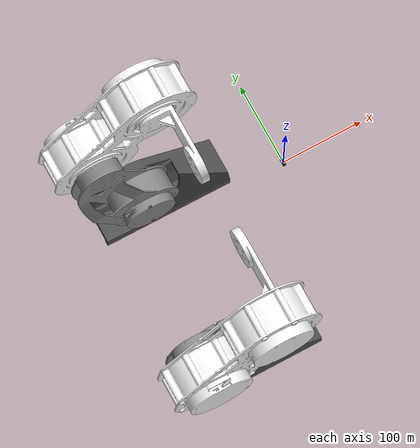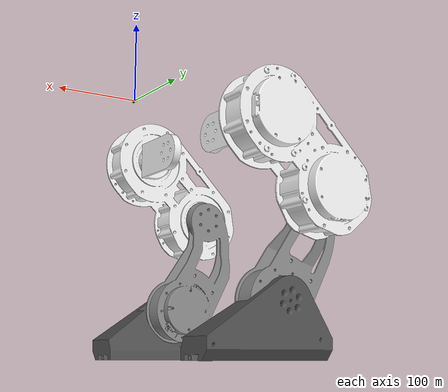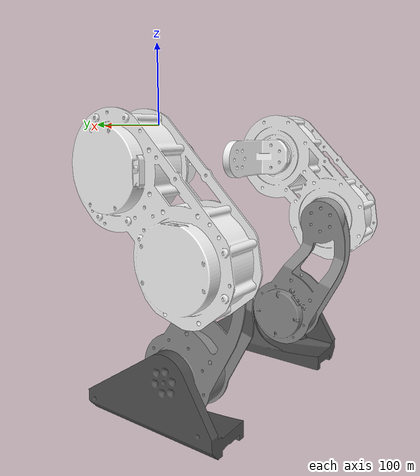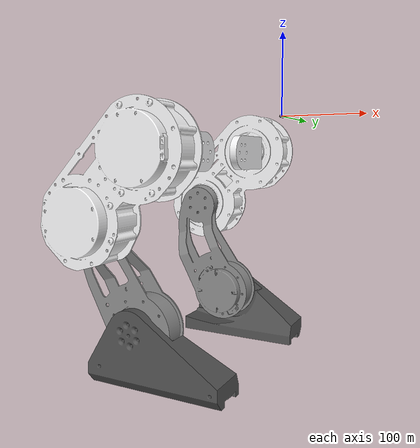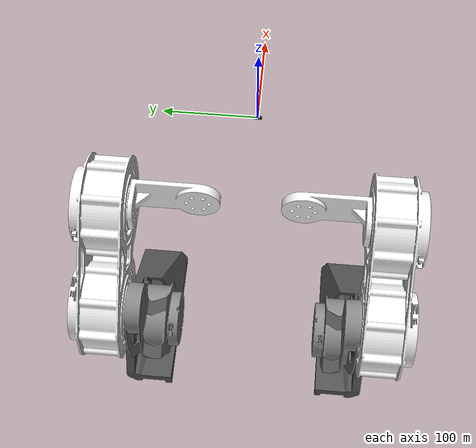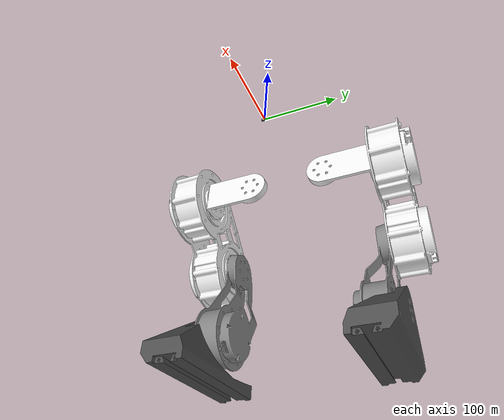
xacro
<?xml version="1.0"?>
<robot xmlns:xacro="http://www.ros.org/wiki/xacro" name="rivetrobot">

  <!-- Materials (shared across all assemblies) -->
  <material name="RS06">
    <color rgba="0.980 0.714 0.004 1.0"/>
  </material>
  <material name="Steel">
    <color rgba="0.196 0.196 0.196 1.0"/>
  </material>
  <material name="Aluminum_6061">
    <color rgba="0.961 0.961 0.965 1.0"/>
  </material>
  <material name="Foot">
    <color rgba="0.314 0.314 0.314 1.0"/>
  </material>
  <material name="RS02">
    <color rgba="0.537 0.537 0.537 1.0"/>
  </material>

  <!-- Assembly includes -->
  <xacro:include filename="$(find rivetrobot_description)/urdf/assemblies/UPPER_HOUS_ASM_1_ASM_2_ASM_1_ASM.urdf.xacro"/>
  <xacro:include filename="$(find rivetrobot_description)/urdf/assemblies/rivetrobot.urdf.xacro"/>

  <!-- Instantiate assemblies -->
  <xacro:UPPER_HOUS_ASM_1_ASM_2_ASM_1_ASM prefix=""/>
  <xacro:rivetrobot prefix=""/>

  <!-- Mount joints (cross-assembly connections) -->
  <!-- These define how assemblies connect to each other. -->
  <!-- When swapping a dummy assembly with a real part, -->
  <!-- update the include + macro call above, and adjust -->
  <!-- parent/child link names in the mount joint below. -->

  <joint name="Rigid_14" type="fixed">
    <parent link="base_link"/>
    <child link="imu"/>
    <origin xyz="0.049483 0.000000 0.050407" rpy="2.137906 0.000000 1.570796"/>
  </joint>

</robot>

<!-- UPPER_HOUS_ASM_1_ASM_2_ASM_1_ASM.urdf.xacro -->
<robot xmlns:xacro="http://www.ros.org/wiki/xacro" name="UPPER_HOUS_ASM_1_ASM_2_ASM_1_ASM_macro">

  <xacro:macro name="UPPER_HOUS_ASM_1_ASM_2_ASM_1_ASM" params="prefix">

    <!-- Links -->
    <link name="${prefix}imu">
      <inertial>
        <origin xyz="-0.000111 -0.000161 -0.004072" rpy="0 0 0"/>
        <mass value="0.227379"/>
        <inertia ixx="3.181533e-05" ixy="1.204393e-07" ixz="-2.547203e-07"
                 iyy="1.625286e-04" iyz="8.916707e-08" izz="1.552163e-04"/>
      </inertial>
      <visual>
        <origin xyz="0.000000 0.000000 0.000000" rpy="0.000000 0.000000 0.000000"/>
        <geometry>
          <mesh filename="package://rivetrobot_description/meshes/UPPER_HOUS_ASM_1_ASM_2_ASM_1_ASM/imu.dae" scale="1 1 1"/>
        </geometry>
        <material name="Steel"/>
      </visual>
      <collision>
        <origin xyz="0.000000 0.000000 0.000000" rpy="0.000000 0.000000 0.000000"/>
        <geometry>
          <mesh filename="package://rivetrobot_description/meshes/UPPER_HOUS_ASM_1_ASM_2_ASM_1_ASM/imu_collision.stl" scale="0.01 0.01 0.01"/>
        </geometry>
      </collision>
    </link>

  </xacro:macro>

</robot>

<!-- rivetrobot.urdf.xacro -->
<robot xmlns:xacro="http://www.ros.org/wiki/xacro" name="rivetrobot_macro">

  <xacro:macro name="rivetrobot" params="prefix">

    <!-- Links -->
    <link name="base_link">
      <inertial>
        <origin xyz="-0.132711 -0.000087 0.013762" rpy="0 0 0"/>
        <mass value="12.524044"/>
        <inertia ixx="5.520864e-02" ixy="-4.161284e-05" ixz="-5.509147e-03"
                 iyy="1.169475e-01" iyz="-1.280153e-05" izz="1.180382e-01"/>
      </inertial>
      <visual>
        <origin xyz="0.000000 0.000000 0.000000" rpy="0.000000 0.000000 0.000000"/>
        <geometry>
          <mesh filename="package://rivetrobot_description/meshes/rivetrobot/base_link.dae" scale="1 1 1"/>
        </geometry>
        <material name="Steel"/>
      </visual>
      <collision>
        <origin xyz="0.000000 0.000000 0.000000" rpy="0.000000 0.000000 0.000000"/>
        <geometry>
          <mesh filename="package://rivetrobot_description/meshes/rivetrobot/base_link_collision.stl" scale="0.01 0.01 0.01"/>
        </geometry>
      </collision>
    </link>

    <link name="Yaw_R">
      <inertial>
        <origin xyz="-0.006105 -0.012631 -0.053523" rpy="0 0 0"/>
        <mass value="0.631727"/>
        <inertia ixx="5.220905e-04" ixy="4.624520e-07" ixz="-3.393596e-06"
                 iyy="3.834018e-04" iyz="-2.135784e-06" izz="3.746279e-04"/>
      </inertial>
      <visual>
        <origin xyz="0.103104 0.050000 -0.011836" rpy="0.000000 0.000000 0.000000"/>
        <geometry>
          <mesh filename="package://rivetrobot_description/meshes/rivetrobot/Yaw_R.dae" scale="1 1 1"/>
        </geometry>
        <material name="RS06"/>
      </visual>
      <collision>
        <origin xyz="0.103104 0.050000 -0.011836" rpy="0.000000 0.000000 0.000000"/>
        <geometry>
          <mesh filename="package://rivetrobot_description/meshes/rivetrobot/Yaw_R_collision.stl" scale="0.01 0.01 0.01"/>
        </geometry>
      </collision>
    </link>

    <link name="Yaw_L">
      <inertial>
        <origin xyz="-0.006105 0.012232 -0.053523" rpy="0 0 0"/>
        <mass value="0.631727"/>
        <inertia ixx="5.220559e-04" ixy="1.046129e-06" ixz="-3.393596e-06"
                 iyy="3.834018e-04" iyz="1.945483e-06" izz="3.745933e-04"/>
      </inertial>
      <visual>
        <origin xyz="0.103104 -0.050000 -0.011836" rpy="0.000000 0.000000 0.000000"/>
        <geometry>
          <mesh filename="package://rivetrobot_description/meshes/rivetrobot/Yaw_L.dae" scale="1 1 1"/>
        </geometry>
        <material name="RS06"/>
      </visual>
      <collision>
        <origin xyz="0.103104 -0.050000 -0.011836" rpy="0.000000 0.000000 0.000000"/>
        <geometry>
          <mesh filename="package://rivetrobot_description/meshes/rivetrobot/Yaw_L_collision.stl" scale="0.01 0.01 0.01"/>
        </geometry>
      </collision>
    </link>

    <link name="arm_right">
      <inertial>
        <origin xyz="-0.029281 -0.000121 -0.002212" rpy="0 0 0"/>
        <mass value="0.099578"/>
        <inertia ixx="2.392334e-05" ixy="-4.319345e-07" ixz="1.219154e-05"
                 iyy="9.735478e-05" iyz="2.497680e-07" izz="1.054438e-04"/>
      </inertial>
      <visual>
        <origin xyz="0.055661 -0.042448 -0.085104" rpy="1.570796 1.570796 0.000000"/>
        <geometry>
          <mesh filename="package://rivetrobot_description/meshes/rivetrobot/arm_right.dae" scale="1 1 1"/>
        </geometry>
        <material name="Aluminum_6061"/>
      </visual>
      <collision>
        <origin xyz="0.055661 -0.042448 -0.085104" rpy="1.570796 1.570796 0.000000"/>
        <geometry>
          <mesh filename="package://rivetrobot_description/meshes/rivetrobot/arm_right_collision.stl" scale="0.01 0.01 0.01"/>
        </geometry>
      </collision>
    </link>

    <link name="arm_left">
      <inertial>
        <origin xyz="0.029282 -0.000121 -0.002212" rpy="0 0 0"/>
        <mass value="0.099578"/>
        <inertia ixx="2.392344e-05" ixy="4.318760e-07" ixz="-1.219163e-05"
                 iyy="9.735515e-05" iyz="2.497505e-07" izz="1.054441e-04"/>
      </inertial>
      <visual>
        <origin xyz="-0.055661 -0.042448 -0.085104" rpy="-1.570796 1.570796 0.000000"/>
        <geometry>
          <mesh filename="package://rivetrobot_description/meshes/rivetrobot/arm_left.dae" scale="1 1 1"/>
        </geometry>
        <material name="Aluminum_6061"/>
      </visual>
      <collision>
        <origin xyz="-0.055661 -0.042448 -0.085104" rpy="-1.570796 1.570796 0.000000"/>
        <geometry>
          <mesh filename="package://rivetrobot_description/meshes/rivetrobot/arm_left_collision.stl" scale="0.01 0.01 0.01"/>
        </geometry>
      </collision>
    </link>

    <link name="thigh_right">
      <inertial>
        <origin xyz="-0.039031 -0.039274 0.023614" rpy="0 0 0"/>
        <mass value="1.847482"/>
        <inertia ixx="4.734522e-03" ixy="-2.825429e-03" ixz="4.772167e-06"
                 iyy="4.691757e-03" iyz="-6.251956e-06" izz="8.222514e-03"/>
      </inertial>
      <visual>
        <origin xyz="0.096867 0.040619 -0.124911" rpy="-1.570796 0.000000 0.000000"/>
        <geometry>
          <mesh filename="package://rivetrobot_description/meshes/rivetrobot/thigh_right.dae" scale="1 1 1"/>
        </geometry>
        <material name="Aluminum_6061"/>
      </visual>
      <collision>
        <origin xyz="0.096867 0.040619 -0.124911" rpy="-1.570796 0.000000 0.000000"/>
        <geometry>
          <mesh filename="package://rivetrobot_description/meshes/rivetrobot/thigh_right_collision.stl" scale="0.01 0.01 0.01"/>
        </geometry>
      </collision>
    </link>

    <link name="thigh_left">
      <inertial>
        <origin xyz="-0.039031 0.039274 0.023614" rpy="0 0 0"/>
        <mass value="1.847482"/>
        <inertia ixx="4.734527e-03" ixy="2.825446e-03" ixz="4.784500e-06"
                 iyy="4.691792e-03" iyz="6.231478e-06" izz="8.222554e-03"/>
      </inertial>
      <visual>
        <origin xyz="0.096867 -0.040619 -0.124911" rpy="-1.570796 0.000000 0.000000"/>
        <geometry>
          <mesh filename="package://rivetrobot_description/meshes/rivetrobot/thigh_left.dae" scale="1 1 1"/>
        </geometry>
        <material name="Aluminum_6061"/>
      </visual>
      <collision>
        <origin xyz="0.096867 -0.040619 -0.124911" rpy="-1.570796 0.000000 0.000000"/>
        <geometry>
          <mesh filename="package://rivetrobot_description/meshes/rivetrobot/thigh_left_collision.stl" scale="0.01 0.01 0.01"/>
        </geometry>
      </collision>
    </link>

    <link name="shin_right">
      <inertial>
        <origin xyz="0.029011 -0.082760 -0.016712" rpy="0 0 0"/>
        <mass value="0.708393"/>
        <inertia ixx="2.861626e-03" ixy="9.393024e-04" ixz="9.203748e-05"
                 iyy="6.852746e-04" iyz="-2.478557e-04" izz="3.353418e-03"/>
      </inertial>
      <visual>
        <origin xyz="0.175000 0.119506 -0.124911" rpy="-1.570796 0.000000 0.000000"/>
        <geometry>
          <mesh filename="package://rivetrobot_description/meshes/rivetrobot/shin_right.dae" scale="1 1 1"/>
        </geometry>
        <material name="RS02"/>
      </visual>
      <collision>
        <origin xyz="0.175000 0.119506 -0.124911" rpy="-1.570796 0.000000 0.000000"/>
        <geometry>
          <mesh filename="package://rivetrobot_description/meshes/rivetrobot/shin_right_collision.stl" scale="0.01 0.01 0.01"/>
        </geometry>
      </collision>
    </link>

    <link name="shin_left">
      <inertial>
        <origin xyz="0.029011 -0.082760 0.016712" rpy="0 0 0"/>
        <mass value="0.708394"/>
        <inertia ixx="2.861628e-03" ixy="9.393034e-04" ixz="-9.203791e-05"
                 iyy="6.852758e-04" iyz="2.478565e-04" izz="3.353421e-03"/>
      </inertial>
      <visual>
        <origin xyz="0.175000 0.119506 0.124911" rpy="1.570796 0.000000 0.000000"/>
        <geometry>
          <mesh filename="package://rivetrobot_description/meshes/rivetrobot/shin_left.dae" scale="1 1 1"/>
        </geometry>
        <material name="RS02"/>
      </visual>
      <collision>
        <origin xyz="0.175000 0.119506 0.124911" rpy="1.570796 0.000000 0.000000"/>
        <geometry>
          <mesh filename="package://rivetrobot_description/meshes/rivetrobot/shin_left_collision.stl" scale="0.01 0.01 0.01"/>
        </geometry>
      </collision>
    </link>

    <link name="foot_right">
      <inertial>
        <origin xyz="0.025986 -0.038807 -0.001568" rpy="0 0 0"/>
        <mass value="0.066062"/>
        <inertia ixx="5.107256e-05" ixy="6.861592e-06" ixz="5.018784e-06"
                 iyy="1.533255e-04" iyz="-1.150518e-05" izz="1.711682e-04"/>
      </inertial>
      <visual>
        <origin xyz="0.127907 0.248894 -0.125411" rpy="-1.570796 0.000000 0.000000"/>
        <geometry>
          <mesh filename="package://rivetrobot_description/meshes/rivetrobot/foot_right.dae" scale="1 1 1"/>
        </geometry>
        <material name="Foot"/>
      </visual>
      <collision>
        <origin xyz="0.127907 0.248894 -0.125411" rpy="-1.570796 0.000000 0.000000"/>
        <geometry>
          <mesh filename="package://rivetrobot_description/meshes/rivetrobot/foot_right_collision.stl" scale="0.01 0.01 0.01"/>
        </geometry>
      </collision>
    </link>

    <link name="foot_left">
      <inertial>
        <origin xyz="0.025986 -0.038807 0.001568" rpy="0 0 0"/>
        <mass value="0.066062"/>
        <inertia ixx="5.107256e-05" ixy="6.861592e-06" ixz="-5.018784e-06"
                 iyy="1.533255e-04" iyz="1.150518e-05" izz="1.711682e-04"/>
      </inertial>
      <visual>
        <origin xyz="0.127907 0.248894 0.125411" rpy="1.570796 0.000000 0.000000"/>
        <geometry>
          <mesh filename="package://rivetrobot_description/meshes/rivetrobot/foot_left.dae" scale="1 1 1"/>
        </geometry>
        <material name="Foot"/>
      </visual>
      <collision>
        <origin xyz="0.127907 0.248894 0.125411" rpy="1.570796 0.000000 0.000000"/>
        <geometry>
          <mesh filename="package://rivetrobot_description/meshes/rivetrobot/foot_left_collision.stl" scale="0.01 0.01 0.01"/>
        </geometry>
      </collision>
    </link>

    <!-- Joints (internal to assembly) -->
    <joint name="Right_Hip_Yaw" type="revolute">
      <parent link="base_link"/>
      <child link="Yaw_R"/>
      <origin xyz="-0.103104 -0.060000 0.011836" rpy="0.000000 0.000000 0.000000"/>
      <axis xyz="0.000000 0.000000 1.000000"/>
      <limit lower="-0.261799" upper="0.349066" effort="100.0" velocity="1.00"/>
    </joint>

    <joint name="Left_Hip_Yaw" type="revolute">
      <parent link="base_link"/>
      <child link="Yaw_L"/>
      <origin xyz="-0.103104 0.060000 0.011836" rpy="0.000000 0.000000 0.000000"/>
      <axis xyz="0.000000 0.000000 1.000000"/>
      <limit lower="-0.349066" upper="0.261799" effort="100.0" velocity="1.00"/>
    </joint>

    <joint name="Right_Hip_Roll" type="revolute">
      <parent link="Yaw_R"/>
      <child link="arm_right"/>
      <origin xyz="0.018000 -0.012500 -0.054284" rpy="-1.570796 0.000000 1.570796"/>
      <axis xyz="0.000000 0.000000 1.000000"/>
      <limit lower="-0.349066" upper="0.349066" effort="100.0" velocity="1.00"/>
    </joint>

    <joint name="Left_Hip_Roll" type="revolute">
      <parent link="Yaw_L"/>
      <child link="arm_left"/>
      <origin xyz="0.018000 0.012500 -0.054284" rpy="-1.570796 0.000000 1.570796"/>
      <axis xyz="0.000000 0.000000 1.000000"/>
      <limit lower="-0.349066" upper="0.349066" effort="100.0" velocity="1.00"/>
    </joint>

    <joint name="Right_Hip_Pitch" type="revolute">
      <parent link="arm_right"/>
      <child link="thigh_right"/>
      <origin xyz="-0.069250 -0.001341 0.008647" rpy="3.141593 1.570796 0.000000"/>
      <axis xyz="0.000000 0.000000 1.000000"/>
      <limit lower="-1.047198" upper="0.436332" effort="100.0" velocity="1.00"/>
    </joint>

    <joint name="Left_Hip_Pitch" type="revolute">
      <parent link="arm_left"/>
      <child link="thigh_left"/>
      <origin xyz="0.069250 -0.001341 0.008647" rpy="0.000000 1.570796 0.000000"/>
      <axis xyz="0.000000 0.000000 1.000000"/>
      <limit lower="-0.436332" upper="1.047198" effort="100.0" velocity="1.00"/>
    </joint>

    <joint name="Right_Knee" type="revolute">
      <parent link="thigh_right"/>
      <child link="shin_right"/>
      <origin xyz="-0.078133 -0.078888 0.000000" rpy="0.000000 0.000000 0.000000"/>
      <axis xyz="0.000000 0.000000 1.000000"/>
      <limit lower="-0.523599" upper="0.610865" effort="100.0" velocity="1.00"/>
    </joint>

    <joint name="Left_Knee" type="revolute">
      <parent link="thigh_left"/>
      <child link="shin_left"/>
      <origin xyz="-0.078133 0.078888 0.000000" rpy="3.141593 0.000000 0.000000"/>
      <axis xyz="0.000000 0.000000 1.000000"/>
      <limit lower="-0.523599" upper="0.610865" effort="100.0" velocity="1.00"/>
    </joint>

    <joint name="Right_Foot" type="revolute">
      <parent link="shin_right"/>
      <child link="foot_right"/>
      <origin xyz="0.047092 -0.129387 0.001000" rpy="0.000000 0.000000 0.000000"/>
      <axis xyz="0.000000 0.000000 1.000000"/>
      <limit lower="-0.261799" upper="0.523599" effort="100.0" velocity="1.00"/>
    </joint>

    <joint name="Left_Foot" type="revolute">
      <parent link="shin_left"/>
      <child link="foot_left"/>
      <origin xyz="0.047092 -0.129387 -0.000500" rpy="0.000000 0.000000 0.000000"/>
      <axis xyz="0.000000 0.000000 1.000000"/>
      <limit lower="-0.261799" upper="0.523599" effort="100.0" velocity="1.00"/>
    </joint>

    <!-- ROS 2 control: generated generic system -->
    <ros2_control name="rivetrobot_system" type="system">
      <hardware>
        <plugin>mock_components/GenericSystem</plugin>
        <param name="cmd_topic">sim/rivetrobot_system/cmd</param>
        <param name="state_topic">sim/rivetrobot_system/state</param>
      </hardware>

      <joint name="Left_Foot">
        <command_interface name="position"/>
        <command_interface name="velocity"/>
        <state_interface name="position">
          <param name="initial_value">0.0</param>
        </state_interface>
        <state_interface name="velocity"/>
        <state_interface name="effort"/>
      </joint>
      <joint name="Left_Hip_Pitch">
        <command_interface name="position"/>
        <command_interface name="velocity"/>
        <state_interface name="position">
          <param name="initial_value">0.0</param>
        </state_interface>
        <state_interface name="velocity"/>
        <state_interface name="effort"/>
      </joint>
      <joint name="Left_Hip_Roll">
        <command_interface name="position"/>
        <command_interface name="velocity"/>
        <state_interface name="position">
          <param name="initial_value">0.0</param>
        </state_interface>
        <state_interface name="velocity"/>
        <state_interface name="effort"/>
      </joint>
      <joint name="Left_Hip_Yaw">
        <command_interface name="position"/>
        <command_interface name="velocity"/>
        <state_interface name="position">
          <param name="initial_value">0.0</param>
        </state_interface>
        <state_interface name="velocity"/>
        <state_interface name="effort"/>
      </joint>
      <joint name="Left_Knee">
        <command_interface name="position"/>
        <command_interface name="velocity"/>
        <state_interface name="position">
          <param name="initial_value">0.0</param>
        </state_interface>
        <state_interface name="velocity"/>
        <state_interface name="effort"/>
      </joint>
      <joint name="Right_Foot">
        <command_interface name="position"/>
        <command_interface name="velocity"/>
        <state_interface name="position">
          <param name="initial_value">0.0</param>
        </state_interface>
        <state_interface name="velocity"/>
        <state_interface name="effort"/>
      </joint>
      <joint name="Right_Hip_Pitch">
        <command_interface name="position"/>
        <command_interface name="velocity"/>
        <state_interface name="position">
          <param name="initial_value">0.0</param>
        </state_interface>
        <state_interface name="velocity"/>
        <state_interface name="effort"/>
      </joint>
      <joint name="Right_Hip_Roll">
        <command_interface name="position"/>
        <command_interface name="velocity"/>
        <state_interface name="position">
          <param name="initial_value">0.0</param>
        </state_interface>
        <state_interface name="velocity"/>
        <state_interface name="effort"/>
      </joint>
      <joint name="Right_Hip_Yaw">
        <command_interface name="position"/>
        <command_interface name="velocity"/>
        <state_interface name="position">
          <param name="initial_value">0.0</param>
        </state_interface>
        <state_interface name="velocity"/>
        <state_interface name="effort"/>
      </joint>
      <joint name="Right_Knee">
        <command_interface name="position"/>
        <command_interface name="velocity"/>
        <state_interface name="position">
          <param name="initial_value">0.0</param>
        </state_interface>
        <state_interface name="velocity"/>
        <state_interface name="effort"/>
      </joint>
    </ros2_control>

  </xacro:macro>

</robot>
